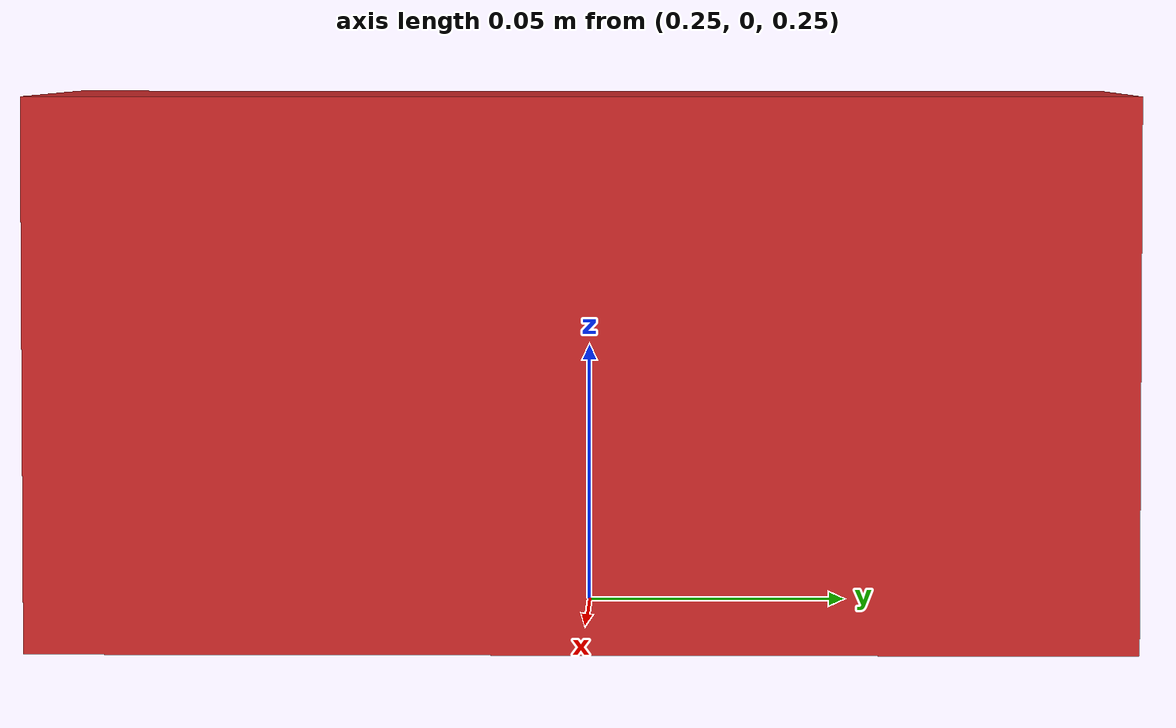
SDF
<?xml version="1.0" ?>
<sdf version="1.6">
  <model name="box_obstacle">
    <static>true</static>
    <link name="link">
      <pose>0.3 0.0 0.3 0 0 0</pose>
      <collision name="collision">
        <geometry>
          <box>
            <size>0.1 0.2 0.1</size>
          </box>
        </geometry>
      </collision>
      <visual name="visual">
        <geometry>
          <box>
            <size>0.1 0.2 0.1</size>
          </box>
        </geometry>
        <material>
          <script>
            <uri>file://media/materials/scripts/gazebo.material</uri>
            <name>Gazebo/Red</name>
          </script>
        </material>
      </visual>
    </link>
  </model>
</sdf>
